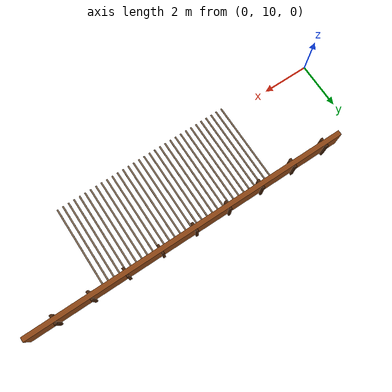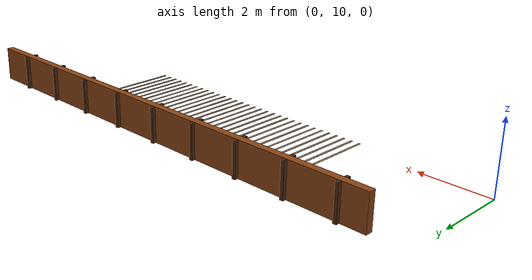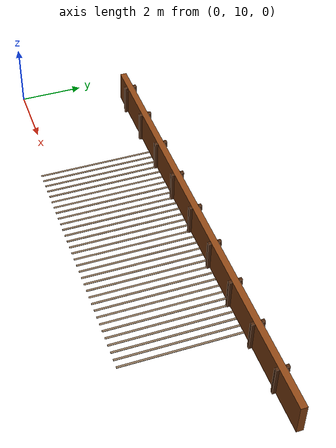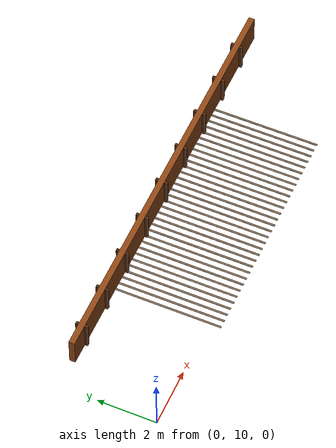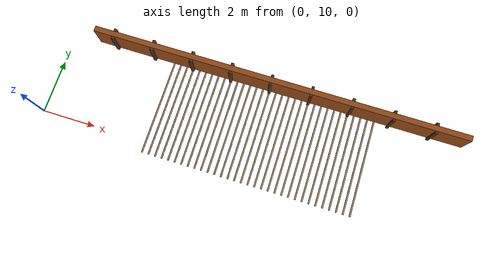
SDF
<sdf version="1.6">
 <world name="terrain_world">
  <model name="lane_wall_4">
   <static>true</static>
   <pose>8.0000 13.3000 0.5000 0.00000 0.00000 0.00000</pose>
   <link name="link">
    <collision name="col"><geometry><box><size>14.0000 0.2000 1.0000</size></box></geometry></collision>
    <visual name="vis">
     <geometry><box><size>14.0000 0.2000 1.0000</size></box></geometry>
     <material><ambient>0.55 0.27 0.08 1</ambient><diffuse>0.55 0.27 0.08 1</diffuse></material>
    </visual>
   </link>
  </model>
  <model name="lane3_rib_l0">
   <static>true</static>
   <pose>1.7500 13.1500 0.5000 0.00000 0.00000 0.00000</pose>
   <link name="link">
    <collision name="col"><geometry><box><size>0.1000 0.1000 1.0000</size></box></geometry></collision>
    <visual name="vis">
     <geometry><box><size>0.1000 0.1000 1.0000</size></box></geometry>
     <material><ambient>0.30 0.15 0.05 1</ambient><diffuse>0.30 0.15 0.05 1</diffuse></material>
    </visual>
   </link>
  </model>
  <model name="lane3_rib_l1">
   <static>true</static>
   <pose>3.2500 13.1500 0.5000 0.00000 0.00000 0.00000</pose>
   <link name="link">
    <collision name="col"><geometry><box><size>0.1000 0.1000 1.0000</size></box></geometry></collision>
    <visual name="vis">
     <geometry><box><size>0.1000 0.1000 1.0000</size></box></geometry>
     <material><ambient>0.30 0.15 0.05 1</ambient><diffuse>0.30 0.15 0.05 1</diffuse></material>
    </visual>
   </link>
  </model>
  <model name="lane3_rib_l2">
   <static>true</static>
   <pose>4.7500 13.1500 0.5000 0.00000 0.00000 0.00000</pose>
   <link name="link">
    <collision name="col"><geometry><box><size>0.1000 0.1000 1.0000</size></box></geometry></collision>
    <visual name="vis">
     <geometry><box><size>0.1000 0.1000 1.0000</size></box></geometry>
     <material><ambient>0.30 0.15 0.05 1</ambient><diffuse>0.30 0.15 0.05 1</diffuse></material>
    </visual>
   </link>
  </model>
  <model name="lane3_rib_l3">
   <static>true</static>
   <pose>6.2500 13.1500 0.5000 0.00000 0.00000 0.00000</pose>
   <link name="link">
    <collision name="col"><geometry><box><size>0.1000 0.1000 1.0000</size></box></geometry></collision>
    <visual name="vis">
     <geometry><box><size>0.1000 0.1000 1.0000</size></box></geometry>
     <material><ambient>0.30 0.15 0.05 1</ambient><diffuse>0.30 0.15 0.05 1</diffuse></material>
    </visual>
   </link>
  </model>
  <model name="lane3_rib_l4">
   <static>true</static>
   <pose>7.7500 13.1500 0.5000 0.00000 0.00000 0.00000</pose>
   <link name="link">
    <collision name="col"><geometry><box><size>0.1000 0.1000 1.0000</size></box></geometry></collision>
    <visual name="vis">
     <geometry><box><size>0.1000 0.1000 1.0000</size></box></geometry>
     <material><ambient>0.30 0.15 0.05 1</ambient><diffuse>0.30 0.15 0.05 1</diffuse></material>
    </visual>
   </link>
  </model>
  <model name="lane3_rib_l5">
   <static>true</static>
   <pose>9.2500 13.1500 0.5000 0.00000 0.00000 0.00000</pose>
   <link name="link">
    <collision name="col"><geometry><box><size>0.1000 0.1000 1.0000</size></box></geometry></collision>
    <visual name="vis">
     <geometry><box><size>0.1000 0.1000 1.0000</size></box></geometry>
     <material><ambient>0.30 0.15 0.05 1</ambient><diffuse>0.30 0.15 0.05 1</diffuse></material>
    </visual>
   </link>
  </model>
  <model name="lane3_rib_l6">
   <static>true</static>
   <pose>10.7500 13.1500 0.5000 0.00000 0.00000 0.00000</pose>
   <link name="link">
    <collision name="col"><geometry><box><size>0.1000 0.1000 1.0000</size></box></geometry></collision>
    <visual name="vis">
     <geometry><box><size>0.1000 0.1000 1.0000</size></box></geometry>
     <material><ambient>0.30 0.15 0.05 1</ambient><diffuse>0.30 0.15 0.05 1</diffuse></material>
    </visual>
   </link>
  </model>
  <model name="lane3_rib_l7">
   <static>true</static>
   <pose>12.2500 13.1500 0.5000 0.00000 0.00000 0.00000</pose>
   <link name="link">
    <collision name="col"><geometry><box><size>0.1000 0.1000 1.0000</size></box></geometry></collision>
    <visual name="vis">
     <geometry><box><size>0.1000 0.1000 1.0000</size></box></geometry>
     <material><ambient>0.30 0.15 0.05 1</ambient><diffuse>0.30 0.15 0.05 1</diffuse></material>
    </visual>
   </link>
  </model>
  <model name="lane3_rib_l8">
   <static>true</static>
   <pose>13.7500 13.1500 0.5000 0.00000 0.00000 0.00000</pose>
   <link name="link">
    <collision name="col"><geometry><box><size>0.1000 0.1000 1.0000</size></box></geometry></collision>
    <visual name="vis">
     <geometry><box><size>0.1000 0.1000 1.0000</size></box></geometry>
     <material><ambient>0.30 0.15 0.05 1</ambient><diffuse>0.30 0.15 0.05 1</diffuse></material>
    </visual>
   </link>
  </model>
  <model name="lane4_rib_r0">
   <static>true</static>
   <pose>1.7500 13.4500 0.5000 0.00000 0.00000 0.00000</pose>
   <link name="link">
    <collision name="col"><geometry><box><size>0.1000 0.1000 1.0000</size></box></geometry></collision>
    <visual name="vis">
     <geometry><box><size>0.1000 0.1000 1.0000</size></box></geometry>
     <material><ambient>0.30 0.15 0.05 1</ambient><diffuse>0.30 0.15 0.05 1</diffuse></material>
    </visual>
   </link>
  </model>
  <model name="lane4_rib_r1">
   <static>true</static>
   <pose>3.2500 13.4500 0.5000 0.00000 0.00000 0.00000</pose>
   <link name="link">
    <collision name="col"><geometry><box><size>0.1000 0.1000 1.0000</size></box></geometry></collision>
    <visual name="vis">
     <geometry><box><size>0.1000 0.1000 1.0000</size></box></geometry>
     <material><ambient>0.30 0.15 0.05 1</ambient><diffuse>0.30 0.15 0.05 1</diffuse></material>
    </visual>
   </link>
  </model>
  <model name="lane4_rib_r2">
   <static>true</static>
   <pose>4.7500 13.4500 0.5000 0.00000 0.00000 0.00000</pose>
   <link name="link">
    <collision name="col"><geometry><box><size>0.1000 0.1000 1.0000</size></box></geometry></collision>
    <visual name="vis">
     <geometry><box><size>0.1000 0.1000 1.0000</size></box></geometry>
     <material><ambient>0.30 0.15 0.05 1</ambient><diffuse>0.30 0.15 0.05 1</diffuse></material>
    </visual>
   </link>
  </model>
  <model name="lane4_rib_r3">
   <static>true</static>
   <pose>6.2500 13.4500 0.5000 0.00000 0.00000 0.00000</pose>
   <link name="link">
    <collision name="col"><geometry><box><size>0.1000 0.1000 1.0000</size></box></geometry></collision>
    <visual name="vis">
     <geometry><box><size>0.1000 0.1000 1.0000</size></box></geometry>
     <material><ambient>0.30 0.15 0.05 1</ambient><diffuse>0.30 0.15 0.05 1</diffuse></material>
    </visual>
   </link>
  </model>
  <model name="lane4_rib_r4">
   <static>true</static>
   <pose>7.7500 13.4500 0.5000 0.00000 0.00000 0.00000</pose>
   <link name="link">
    <collision name="col"><geometry><box><size>0.1000 0.1000 1.0000</size></box></geometry></collision>
    <visual name="vis">
     <geometry><box><size>0.1000 0.1000 1.0000</size></box></geometry>
     <material><ambient>0.30 0.15 0.05 1</ambient><diffuse>0.30 0.15 0.05 1</diffuse></material>
    </visual>
   </link>
  </model>
  <model name="lane4_rib_r5">
   <static>true</static>
   <pose>9.2500 13.4500 0.5000 0.00000 0.00000 0.00000</pose>
   <link name="link">
    <collision name="col"><geometry><box><size>0.1000 0.1000 1.0000</size></box></geometry></collision>
    <visual name="vis">
     <geometry><box><size>0.1000 0.1000 1.0000</size></box></geometry>
     <material><ambient>0.30 0.15 0.05 1</ambient><diffuse>0.30 0.15 0.05 1</diffuse></material>
    </visual>
   </link>
  </model>
  <model name="lane4_rib_r6">
   <static>true</static>
   <pose>10.7500 13.4500 0.5000 0.00000 0.00000 0.00000</pose>
   <link name="link">
    <collision name="col"><geometry><box><size>0.1000 0.1000 1.0000</size></box></geometry></collision>
    <visual name="vis">
     <geometry><box><size>0.1000 0.1000 1.0000</size></box></geometry>
     <material><ambient>0.30 0.15 0.05 1</ambient><diffuse>0.30 0.15 0.05 1</diffuse></material>
    </visual>
   </link>
  </model>
  <model name="lane4_rib_r7">
   <static>true</static>
   <pose>12.2500 13.4500 0.5000 0.00000 0.00000 0.00000</pose>
   <link name="link">
    <collision name="col"><geometry><box><size>0.1000 0.1000 1.0000</size></box></geometry></collision>
    <visual name="vis">
     <geometry><box><size>0.1000 0.1000 1.0000</size></box></geometry>
     <material><ambient>0.30 0.15 0.05 1</ambient><diffuse>0.30 0.15 0.05 1</diffuse></material>
    </visual>
   </link>
  </model>
  <model name="lane4_rib_r8">
   <static>true</static>
   <pose>13.7500 13.4500 0.5000 0.00000 0.00000 0.00000</pose>
   <link name="link">
    <collision name="col"><geometry><box><size>0.1000 0.1000 1.0000</size></box></geometry></collision>
    <visual name="vis">
     <geometry><box><size>0.1000 0.1000 1.0000</size></box></geometry>
     <material><ambient>0.30 0.15 0.05 1</ambient><diffuse>0.30 0.15 0.05 1</diffuse></material>
    </visual>
   </link>
  </model>
  <model name="lane3_rough">
   <static>true</static>
   <pose>8.0000 11.4000 0 0 0 0</pose>
   <link name="link">
    <collision name="c0">
     <pose>-4.0000 0 0.0037 0 0 0</pose>
     <geometry><box><size>0.06 3.600 0.0074</size></box></geometry>
    </collision>
    <visual name="v0">
     <pose>-4.0000 0 0.0037 0 0 0</pose>
     <geometry><box><size>0.06 3.600 0.0074</size></box></geometry>
     <material><ambient>0.55 0.45 0.35 1</ambient><diffuse>0.55 0.45 0.35 1</diffuse></material>
    </visual>
    <collision name="c1">
     <pose>-3.7500 0 0.0052 0 0 0</pose>
     <geometry><box><size>0.06 3.600 0.0104</size></box></geometry>
    </collision>
    <visual name="v1">
     <pose>-3.7500 0 0.0052 0 0 0</pose>
     <geometry><box><size>0.06 3.600 0.0104</size></box></geometry>
     <material><ambient>0.55 0.45 0.35 1</ambient><diffuse>0.55 0.45 0.35 1</diffuse></material>
    </visual>
    <collision name="c2">
     <pose>-3.5000 0 0.0043 0 0 0</pose>
     <geometry><box><size>0.06 3.600 0.0087</size></box></geometry>
    </collision>
    <visual name="v2">
     <pose>-3.5000 0 0.0043 0 0 0</pose>
     <geometry><box><size>0.06 3.600 0.0087</size></box></geometry>
     <material><ambient>0.55 0.45 0.35 1</ambient><diffuse>0.55 0.45 0.35 1</diffuse></material>
    </visual>
    <collision name="c3">
     <pose>-3.2500 0 0.0055 0 0 0</pose>
     <geometry><box><size>0.06 3.600 0.0110</size></box></geometry>
    </collision>
    <visual name="v3">
     <pose>-3.2500 0 0.0055 0 0 0</pose>
     <geometry><box><size>0.06 3.600 0.0110</size></box></geometry>
     <material><ambient>0.55 0.45 0.35 1</ambient><diffuse>0.55 0.45 0.35 1</diffuse></material>
    </visual>
    <collision name="c4">
     <pose>-3.0000 0 0.0056 0 0 0</pose>
     <geometry><box><size>0.06 3.600 0.0113</size></box></geometry>
    </collision>
    <visual name="v4">
     <pose>-3.0000 0 0.0056 0 0 0</pose>
     <geometry><box><size>0.06 3.600 0.0113</size></box></geometry>
     <material><ambient>0.55 0.45 0.35 1</ambient><diffuse>0.55 0.45 0.35 1</diffuse></material>
    </visual>
    <collision name="c5">
     <pose>-2.7500 0 0.0028 0 0 0</pose>
     <geometry><box><size>0.06 3.600 0.0057</size></box></geometry>
    </collision>
    <visual name="v5">
     <pose>-2.7500 0 0.0028 0 0 0</pose>
     <geometry><box><size>0.06 3.600 0.0057</size></box></geometry>
     <material><ambient>0.55 0.45 0.35 1</ambient><diffuse>0.55 0.45 0.35 1</diffuse></material>
    </visual>
    <collision name="c6">
     <pose>-2.5000 0 0.0026 0 0 0</pose>
     <geometry><box><size>0.06 3.600 0.0051</size></box></geometry>
    </collision>
    <visual name="v6">
     <pose>-2.5000 0 0.0026 0 0 0</pose>
     <geometry><box><size>0.06 3.600 0.0051</size></box></geometry>
     <material><ambient>0.55 0.45 0.35 1</ambient><diffuse>0.55 0.45 0.35 1</diffuse></material>
    </visual>
    <collision name="c7">
     <pose>-2.2500 0 0.0067 0 0 0</pose>
     <geometry><box><size>0.06 3.600 0.0134</size></box></geometry>
    </collision>
    <visual name="v7">
     <pose>-2.2500 0 0.0067 0 0 0</pose>
     <geometry><box><size>0.06 3.600 0.0134</size></box></geometry>
     <material><ambient>0.55 0.45 0.35 1</ambient><diffuse>0.55 0.45 0.35 1</diffuse></material>
    </visual>
    <collision name="c8">
     <pose>-2.0000 0 0.0038 0 0 0</pose>
     <geometry><box><size>0.06 3.600 0.0076</size></box></geometry>
    </collision>
    <visual name="v8">
     <pose>-2.0000 0 0.0038 0 0 0</pose>
     <geometry><box><size>0.06 3.600 0.0076</size></box></geometry>
     <material><ambient>0.55 0.45 0.35 1</ambient><diffuse>0.55 0.45 0.35 1</diffuse></material>
    </visual>
    <collision name="c9">
     <pose>-1.7500 0 0.0037 0 0 0</pose>
     <geometry><box><size>0.06 3.600 0.0073</size></box></geometry>
    </collision>
    <visual name="v9">
     <pose>-1.7500 0 0.0037 0 0 0</pose>
     <geometry><box><size>0.06 3.600 0.0073</size></box></geometry>
     <material><ambient>0.55 0.45 0.35 1</ambient><diffuse>0.55 0.45 0.35 1</diffuse></material>
    </visual>
    <collision name="c10">
     <pose>-1.5000 0 0.0075 0 0 0</pose>
     <geometry><box><size>0.06 3.600 0.0150</size></box></geometry>
    </collision>
    <visual name="v10">
     <pose>-1.5000 0 0.0075 0 0 0</pose>
     <geometry><box><size>0.06 3.600 0.0150</size></box></geometry>
     <material><ambient>0.55 0.45 0.35 1</ambient><diffuse>0.55 0.45 0.35 1</diffuse></material>
    </visual>
    <collision name="c11">
     <pose>-1.2500 0 0.0049 0 0 0</pose>
     <geometry><box><size>0.06 3.600 0.0097</size></box></geometry>
    </collision>
    <visual name="v11">
     <pose>-1.2500 0 0.0049 0 0 0</pose>
     <geometry><box><size>0.06 3.600 0.0097</size></box></geometry>
     <material><ambient>0.55 0.45 0.35 1</ambient><diffuse>0.55 0.45 0.35 1</diffuse></material>
    </visual>
    <collision name="c12">
     <pose>-1.0000 0 0.0067 0 0 0</pose>
     <geometry><box><size>0.06 3.600 0.0134</size></box></geometry>
    </collision>
    <visual name="v12">
     <pose>-1.0000 0 0.0067 0 0 0</pose>
     <geometry><box><size>0.06 3.600 0.0134</size></box></geometry>
     <material><ambient>0.55 0.45 0.35 1</ambient><diffuse>0.55 0.45 0.35 1</diffuse></material>
    </visual>
    <collision name="c13">
     <pose>-0.7500 0 0.0049 0 0 0</pose>
     <geometry><box><size>0.06 3.600 0.0098</size></box></geometry>
    </collision>
    <visual name="v13">
     <pose>-0.7500 0 0.0049 0 0 0</pose>
     <geometry><box><size>0.06 3.600 0.0098</size></box></geometry>
     <material><ambient>0.55 0.45 0.35 1</ambient><diffuse>0.55 0.45 0.35 1</diffuse></material>
    </visual>
    <collision name="c14">
     <pose>-0.5000 0 0.0057 0 0 0</pose>
     <geometry><box><size>0.06 3.600 0.0114</size></box></geometry>
    </collision>
    <visual name="v14">
     <pose>-0.5000 0 0.0057 0 0 0</pose>
     <geometry><box><size>0.06 3.600 0.0114</size></box></geometry>
     <material><ambient>0.55 0.45 0.35 1</ambient><diffuse>0.55 0.45 0.35 1</diffuse></material>
    </visual>
    <collision name="c15">
     <pose>-0.2500 0 0.0033 0 0 0</pose>
     <geometry><box><size>0.06 3.600 0.0065</size></box></geometry>
    </collision>
    <visual name="v15">
     <pose>-0.2500 0 0.0033 0 0 0</pose>
     <geometry><box><size>0.06 3.600 0.0065</size></box></geometry>
     <material><ambient>0.55 0.45 0.35 1</ambient><diffuse>0.55 0.45 0.35 1</diffuse></material>
    </visual>
    <collision name="c16">
     <pose>0.0000 0 0.0057 0 0 0</pose>
     <geometry><box><size>0.06 3.600 0.0113</size></box></geometry>
    </collision>
    <visual name="v16">
     <pose>0.0000 0 0.0057 0 0 0</pose>
     <geometry><box><size>0.06 3.600 0.0113</size></box></geometry>
     <material><ambient>0.55 0.45 0.35 1</ambient><diffuse>0.55 0.45 0.35 1</diffuse></material>
    </visual>
    <collision name="c17">
     <pose>0.2500 0 0.0068 0 0 0</pose>
     <geometry><box><size>0.06 3.600 0.0137</size></box></geometry>
    </collision>
    <visual name="v17">
     <pose>0.2500 0 0.0068 0 0 0</pose>
     <geometry><box><size>0.06 3.600 0.0137</size></box></geometry>
     <material><ambient>0.55 0.45 0.35 1</ambient><diffuse>0.55 0.45 0.35 1</diffuse></material>
    </visual>
    <collision name="c18">
     <pose>0.5000 0 0.0051 0 0 0</pose>
     <geometry><box><size>0.06 3.600 0.0102</size></box></geometry>
    </collision>
    <visual name="v18">
     <pose>0.5000 0 0.0051 0 0 0</pose>
     <geometry><box><size>0.06 3.600 0.0102</size></box></geometry>
     <material><ambient>0.55 0.45 0.35 1</ambient><diffuse>0.55 0.45 0.35 1</diffuse></material>
    </visual>
    <collision name="c19">
     <pose>0.7500 0 0.0062 0 0 0</pose>
     <geometry><box><size>0.06 3.600 0.0124</size></box></geometry>
    </collision>
    <visual name="v19">
     <pose>0.7500 0 0.0062 0 0 0</pose>
     <geometry><box><size>0.06 3.600 0.0124</size></box></geometry>
     <material><ambient>0.55 0.45 0.35 1</ambient><diffuse>0.55 0.45 0.35 1</diffuse></material>
    </visual>
    <collision name="c20">
     <pose>1.0000 0 0.0059 0 0 0</pose>
     <geometry><box><size>0.06 3.600 0.0117</size></box></geometry>
    </collision>
    <visual name="v20">
     <pose>1.0000 0 0.0059 0 0 0</pose>
     <geometry><box><size>0.06 3.600 0.0117</size></box></geometry>
     <material><ambient>0.55 0.45 0.35 1</ambient><diffuse>0.55 0.45 0.35 1</diffuse></material>
    </visual>
    <collision name="c21">
     <pose>1.2500 0 0.0028 0 0 0</pose>
     <geometry><box><size>0.06 3.600 0.0056</size></box></geometry>
    </collision>
    <visual name="v21">
     <pose>1.2500 0 0.0028 0 0 0</pose>
     <geometry><box><size>0.06 3.600 0.0056</size></box></geometry>
     <material><ambient>0.55 0.45 0.35 1</ambient><diffuse>0.55 0.45 0.35 1</diffuse></material>
    </visual>
    <collision name="c22">
     <pose>1.5000 0 0.0063 0 0 0</pose>
     <geometry><box><size>0.06 3.600 0.0126</size></box></geometry>
    </collision>
    <visual name="v22">
     <pose>1.5000 0 0.0063 0 0 0</pose>
     <geometry><box><size>0.06 3.600 0.0126</size></box></geometry>
     <material><ambient>0.55 0.45 0.35 1</ambient><diffuse>0.55 0.45 0.35 1</diffuse></material>
    </visual>
    <collision name="c23">
     <pose>1.7500 0 0.0055 0 0 0</pose>
     <geometry><box><size>0.06 3.600 0.0109</size></box></geometry>
    </collision>
    <visual name="v23">
     <pose>1.7500 0 0.0055 0 0 0</pose>
     <geometry><box><size>0.06 3.600 0.0109</size></box></geometry>
     <material><ambient>0.55 0.45 0.35 1</ambient><diffuse>0.55 0.45 0.35 1</diffuse></material>
    </visual>
    <collision name="c24">
     <pose>2.0000 0 0.0040 0 0 0</pose>
     <geometry><box><size>0.06 3.600 0.0080</size></box></geometry>
    </collision>
    <visual name="v24">
     <pose>2.0000 0 0.0040 0 0 0</pose>
     <geometry><box><size>0.06 3.600 0.0080</size></box></geometry>
     <material><ambient>0.55 0.45 0.35 1</ambient><diffuse>0.55 0.45 0.35 1</diffuse></material>
    </visual>
    <collision name="c25">
     <pose>2.2500 0 0.0027 0 0 0</pose>
     <geometry><box><size>0.06 3.600 0.0053</size></box></geometry>
    </collision>
    <visual name="v25">
     <pose>2.2500 0 0.0027 0 0 0</pose>
     <geometry><box><size>0.06 3.600 0.0053</size></box></geometry>
     <material><ambient>0.55 0.45 0.35 1</ambient><diffuse>0.55 0.45 0.35 1</diffuse></material>
    </visual>
    <collision name="c26">
     <pose>2.5000 0 0.0068 0 0 0</pose>
     <geometry><box><size>0.06 3.600 0.0137</size></box></geometry>
    </collision>
    <visual name="v26">
     <pose>2.5000 0 0.0068 0 0 0</pose>
     <geometry><box><size>0.06 3.600 0.0137</size></box></geometry>
     <material><ambient>0.55 0.45 0.35 1</ambient><diffuse>0.55 0.45 0.35 1</diffuse></material>
    </visual>
    <collision name="c27">
     <pose>2.7500 0 0.0049 0 0 0</pose>
     <geometry><box><size>0.06 3.600 0.0097</size></box></geometry>
    </collision>
    <visual name="v27">
     <pose>2.7500 0 0.0049 0 0 0</pose>
     <geometry><box><size>0.06 3.600 0.0097</size></box></geometry>
     <material><ambient>0.55 0.45 0.35 1</ambient><diffuse>0.55 0.45 0.35 1</diffuse></material>
    </visual>
    <collision name="c28">
     <pose>3.0000 0 0.0061 0 0 0</pose>
     <geometry><box><size>0.06 3.600 0.0122</size></box></geometry>
    </collision>
    <visual name="v28">
     <pose>3.0000 0 0.0061 0 0 0</pose>
     <geometry><box><size>0.06 3.600 0.0122</size></box></geometry>
     <material><ambient>0.55 0.45 0.35 1</ambient><diffuse>0.55 0.45 0.35 1</diffuse></material>
    </visual>
    <collision name="c29">
     <pose>3.2500 0 0.0069 0 0 0</pose>
     <geometry><box><size>0.06 3.600 0.0138</size></box></geometry>
    </collision>
    <visual name="v29">
     <pose>3.2500 0 0.0069 0 0 0</pose>
     <geometry><box><size>0.06 3.600 0.0138</size></box></geometry>
     <material><ambient>0.55 0.45 0.35 1</ambient><diffuse>0.55 0.45 0.35 1</diffuse></material>
    </visual>
    <collision name="c30">
     <pose>3.5000 0 0.0061 0 0 0</pose>
     <geometry><box><size>0.06 3.600 0.0121</size></box></geometry>
    </collision>
    <visual name="v30">
     <pose>3.5000 0 0.0061 0 0 0</pose>
     <geometry><box><size>0.06 3.600 0.0121</size></box></geometry>
     <material><ambient>0.55 0.45 0.35 1</ambient><diffuse>0.55 0.45 0.35 1</diffuse></material>
    </visual>
    <collision name="c31">
     <pose>3.7500 0 0.0071 0 0 0</pose>
     <geometry><box><size>0.06 3.600 0.0142</size></box></geometry>
    </collision>
    <visual name="v31">
     <pose>3.7500 0 0.0071 0 0 0</pose>
     <geometry><box><size>0.06 3.600 0.0142</size></box></geometry>
     <material><ambient>0.55 0.45 0.35 1</ambient><diffuse>0.55 0.45 0.35 1</diffuse></material>
    </visual>
   </link>
  </model>
 </world>
</sdf>
